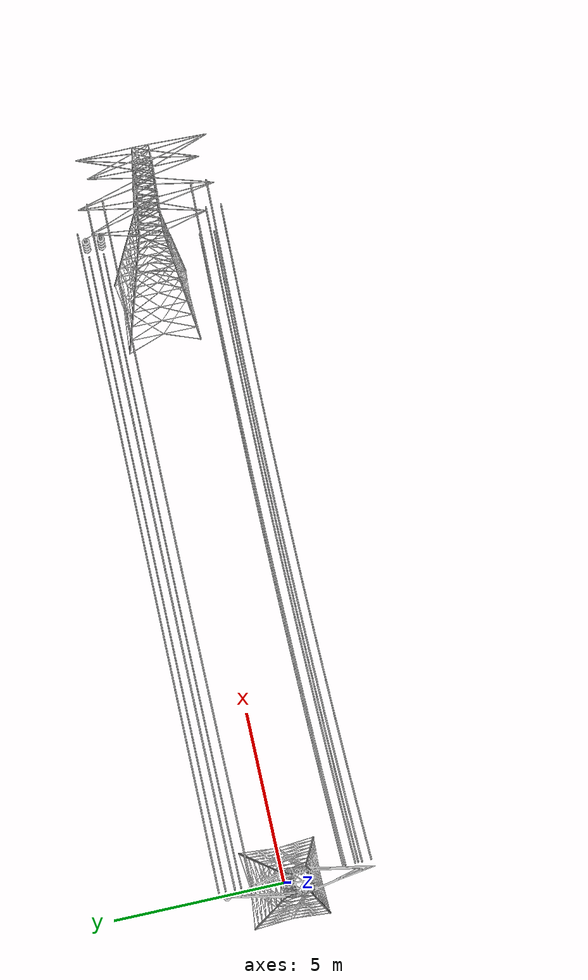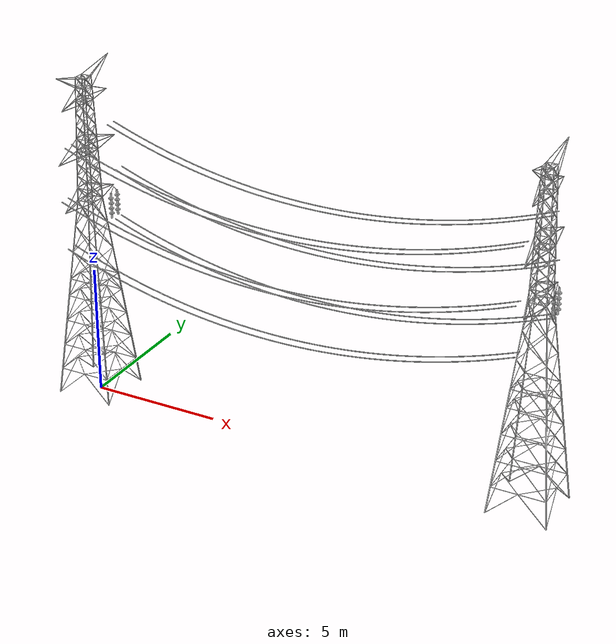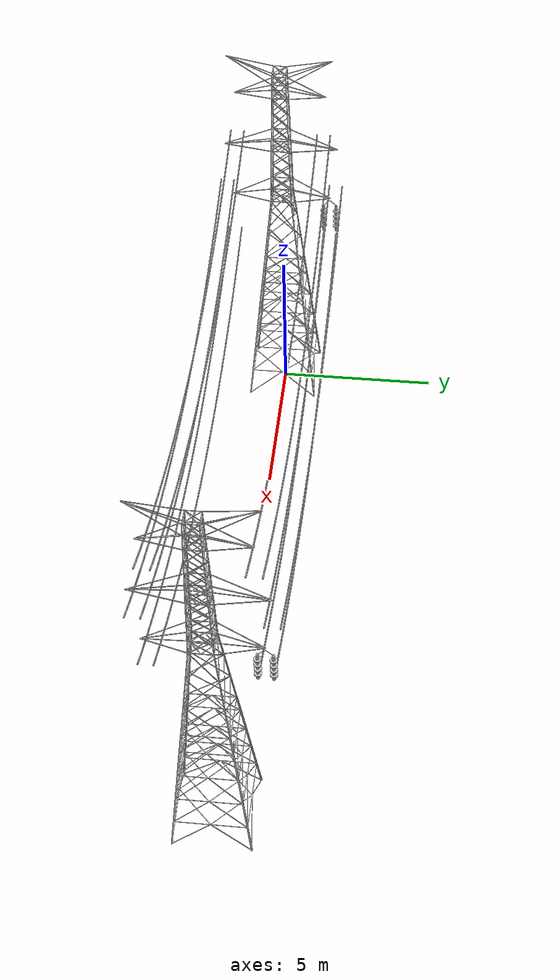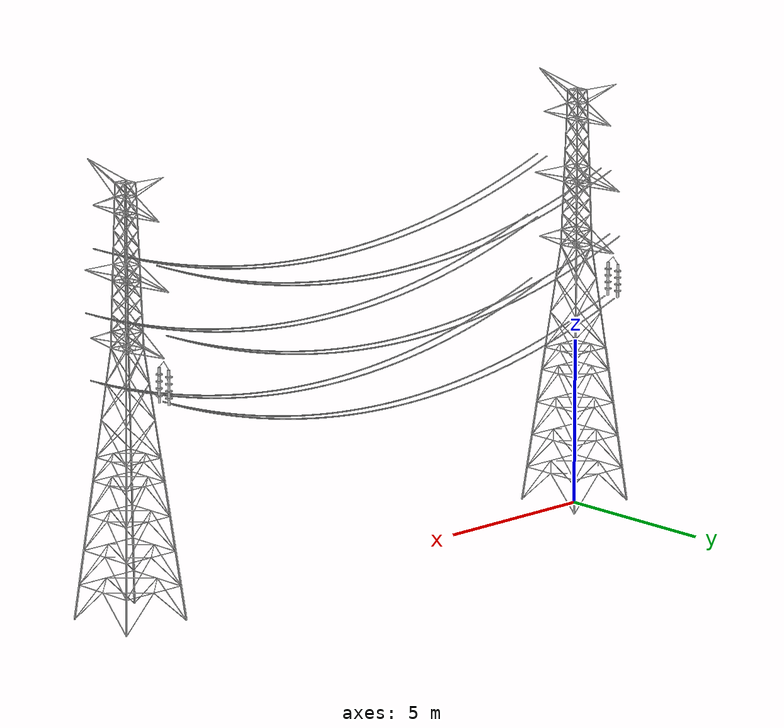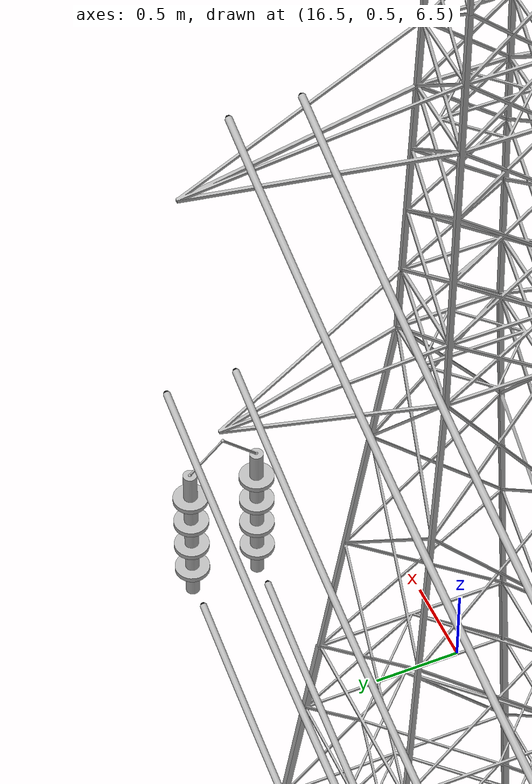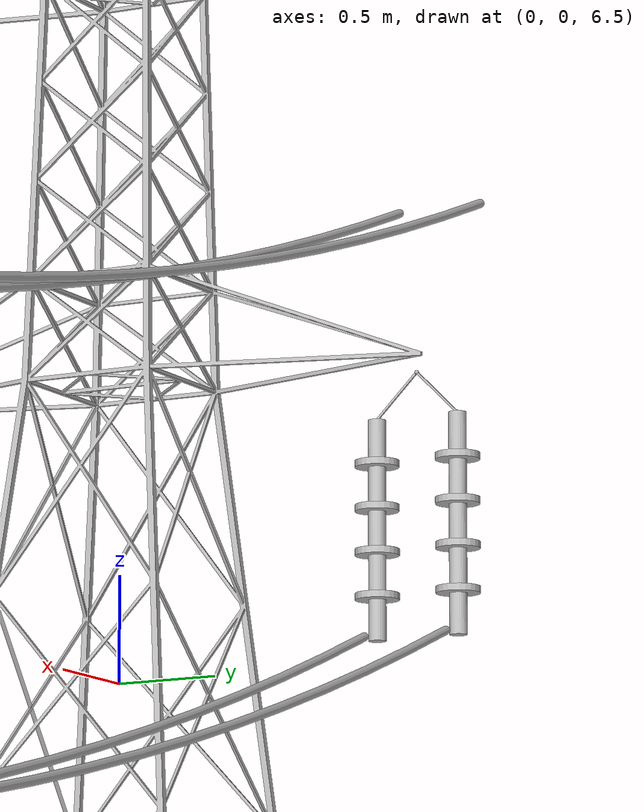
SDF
<?xml version='1.0'?>
<sdf version='1.4'>
<static>true</static>

	<model name="Red">
		<include>
      		<uri>model://Torre</uri>
            <name>Torre_0</name>
      		<pose>0.0 0 0 0 0 0</pose>
    	</include>

	<include>
      		<uri>model://Torre</uri>
            		<name>Torre_1</name>
      		<pose>17.4548 0 0 0 0 0</pose>
    	</include>

        <include>
            <uri>model://cable_torre</uri>
	      <name>Cable_1</name>
            <pose>8.73 1.32 6.6 0 0 0</pose>
        </include>

        <include>
            <uri>model://cable_torre</uri>
		<name>Cable_2</name>
            <pose>8.73 1.72 6.6 0 0 0</pose>
        </include>

        <include>
            <uri>model://cable_torre</uri>
		<name>Cable_3</name>
            <pose>8.73 -1.72 6.6 0 0 0</pose>
        </include>

        <include>
            <uri>model://cable_torre</uri>
		<name>Cable_4</name>
            <pose>8.73 -1.32 6.6 0 0 0</pose>
        </include>

        <include>
            <uri>model://cable_torre</uri>
		<name>Cable_5</name>
            <pose>8.73 1.50 8.5 0 0 0</pose>
        </include>

        <include>
            <uri>model://cable_torre</uri>
		<name>Cable_7</name>
            <pose>8.73 -1.50 8.5 0 0 0</pose>
        </include>

        <include>
            <uri>model://cable_torre</uri>
		<name>Cable_8</name>
            <pose>8.73 -1.90 8.5 0 0 0</pose>
        </include>

        <include>
            <uri>model://cable_torre</uri>
		<name>Cable_6</name>
            <pose>8.73 1.90 8.5 0 0 0</pose>
        </include>

        <include>
            <uri>model://cable_torre</uri>
		<name>Cable_9</name>
            <pose>8.73 -1.52 10.4 0 0 0</pose>
        </include>

        <include>
            <uri>model://cable_torre</uri>
		<name>Cable_10</name>
            <pose>8.73 1.52 10.4 0 0 0</pose>
        </include>

        <include>
            <uri>model://cable_torre</uri>
		<name>Cable_11</name>
            <pose>8.73 1.12 10.4 0 0 0</pose>
        </include>

        <include>
            <uri>model://cable_torre</uri>
		<name>Cable_12</name>
            <pose>8.73 -1.12 10.4 0 0 0</pose>
        </include>

        <joint name="joint_Cable_0_0_1_A" type="fixed">
            <parent>Torre_2::link_torre</parent>
            <child>cable_torre::link_1</child>
        </joint>

        <joint name="joint_Cable_0_0_2_A" type="fixed">
            <parent>Torre_1::link_torre</parent>
            <child>cable_torre::link_0</child>
        </joint>

        <joint name="joint_Cable_0_0_3_A" type="fixed">
            <parent>Torre_2::link_torre</parent>
            <child>cable_torre::link_1</child>
        </joint>

        <joint name="joint_Cable_0_0_4_A" type="fixed">
            <parent>Torre_1::link_torre</parent>
            <child>cable_torre::link_0</child>
        </joint>

	</model>
</sdf>

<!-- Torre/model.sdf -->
<sdf version="1.4">
	<model name="Torre">
		<static>false</static>
		<self_collide>false</self_collide>
		<link name="link_torre">
  			<pose>0 0 0.1 0 0 0</pose>
			<visual name="visual_torre">
				<geometry>
        			<mesh>
          				<uri>model://Torre/meshes/Torre.stl</uri>
          				<scale>20 20 20</scale>
        			</mesh>
      			</geometry>
			</visual>

			<collision name="collision_torre">
				<pose>0 0 6.5 0 0 0</pose>
				<geometry>
					<box>
		            	<size>1 1 13</size>
		        	</box>
		        </geometry>
			</collision>
			<inertial>
				<mass>5000</mass>
				<inertia>
			        <ixx>1</ixx>
			        <iyy>1</iyy>
			        <izz>1</izz>
			    </inertia>
			</inertial>
		</link>

		<joint name="joint_suelo" type="fixed">
			<parent>world</parent>
			<child>link_torre</child>
		</joint>

		<include>
			<uri>model://Apoyo_cables</uri>
			<pose>0 1.52 7.8 0 1.5707963267948966 0</pose>
			<name>apoyo_0_0</name>
		</include>

		<joint name="joint_apoyo_0_0" type="fixed">
			<child>apoyo_0_0::bola_central</child>
			<parent>world</parent>
		</joint>
	</model>
</sdf>

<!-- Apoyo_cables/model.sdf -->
<sdf version="1.4">
	<model name="apoyo">
		<static>false</static>
		<self_collide>false</self_collide>
		<pose>0 0 2 0 0 0</pose>
		<link name="bola_central">
			<visual name="visual">
				<geometry>
        			<sphere>
          				<radius>0.01</radius>
        			</sphere>
      			</geometry>
			</visual>

			<collision name="collision">
				<geometry>
        			<sphere>
          				<radius>0.01</radius>
        			</sphere>
      			</geometry>
			</collision>
		</link>

		<link name="palo_0">
			<pose>0.10 0.10 0 0 0 0.7853981633974483</pose>
			<visual name="visual">
				<geometry>
					<box>
						<size>0.2828 0.01 0.01</size>
					</box>
				</geometry>
			</visual>

 			<collision name="collision">
				<geometry>
					<box>
						<size>0.2828 0.01 0.01</size>
					</box>
				</geometry>
			</collision>
		</link>

		<joint name="bola_central_palo_0" type="fixed">
			<parent>bola_central</parent>
			<child>palo_0</child>
		</joint>

		<link name="bola_borde_0">
			<pose>0.2  0.2 0 0 0 0</pose>
			<visual name="visual">
				<geometry>
        			<sphere>
          				<radius>0.01</radius>
        			</sphere>
      			</geometry>
			</visual>

			<collision name="collision">
				<geometry>
        			<sphere>
          				<radius>0.01</radius>
        			</sphere>
      			</geometry>
			</collision>
		</link>

		<joint name="bola_borde_0_palo_0" type="fixed">
			<parent>bola_borde_0</parent>
			<child>palo_0</child>
		</joint> -->

		<include>
			<uri>model://Aislador</uri>
			<name>Aislador_0</name>
			<pose>0.2  0.2 0 0 -1.5707963267948966 0</pose>
		</include>

		<joint name="joint_aislador_0" type="fixed">
			<child>Aislador_0::aislador</child>
			<parent>bola_borde_0</parent>
		</joint>

		<link name="palo_1">
			<pose>0.10 -0.10 0 0 0 -0.7853981633974483</pose>
			<visual name="visual">
				<geometry>
					<box>
						<size>0.2828 0.01 0.01</size>
					</box>
				</geometry>
			</visual>

 			<collision name="collision">
				<geometry>
					<box>
						<size>0.2828 0.01 0.01</size>
					</box>
				</geometry>
			</collision>
		</link>

		<joint name="bola_central_palo_1" type="fixed">
			<parent>bola_central</parent>
			<child>palo_1</child>
		</joint>

		<link name="bola_borde_1">
			<pose>0.2 -0.2 0 0 0 0</pose>
			<visual name="visual">
				<geometry>
        			<sphere>
          				<radius>0.01</radius>
        			</sphere>
      			</geometry>
			</visual>

			<collision name="collision">
				<geometry>
        			<sphere>
          				<radius>0.01</radius>
        			</sphere>
      			</geometry>
			</collision>
		</link>

		<joint name="bola_borde_1_palo_1" type="fixed">
			<parent>bola_borde_1</parent>
			<child>palo_1</child>
		</joint> -->

		<include>
			<uri>model://Aislador</uri>
			<name>Aislador_1</name>
			<pose>0.2 -0.2 0 0 -1.5707963267948966 0</pose>
		</include>

		<joint name="joint_aislador_1" type="fixed">
			<child>Aislador_1::aislador</child>
			<parent>bola_borde_1</parent>
		</joint>

	</model>
</sdf>

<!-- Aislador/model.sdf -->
<sdf version='1.6'>
	<model name='Aislador'>
		<self_collide>false</self_collide>
		<link name='aislador'>
			<visual name = "visual_palo">
				<pose>0 0 -0.5 0 0 0</pose>
				<geometry>
					<cylinder>
						<radius>0.04</radius>
						<length>1</length>
					</cylinder>
				</geometry>
			</visual>
			<collision name = "collision_palo">
				<pose>0 0 -0.5 0 0 0</pose>
				<geometry>
					<cylinder>
						<radius>0.04</radius>
						<length>1</length>
					</cylinder>
				</geometry>
			</collision>

			<visual name='visual_cilindro_1'>
				<pose>0 0 -0.2 0 0 0</pose>
		        <geometry>
			        <cylinder>
			            <radius>0.1</radius>
			            <length>0.03</length>
			        </cylinder>
		        </geometry>
      		</visual>
      		<collision name='visual_cilindro_1'>
      			<pose>0 0 -0.2 0 0 0</pose>
        		<geometry>
          			<cylinder>
			            <radius>0.1</radius>
			            <length>0.03</length>
          			</cylinder>
        		</geometry>
      		</collision>

			<visual name='visual_cilindro_2'>
				<pose>0 0 -0.4 0 0 0</pose>
		        <geometry>
			        <cylinder>
			            <radius>0.1</radius>
			            <length>0.03</length>
			        </cylinder>
		        </geometry>
      		</visual>
      		<collision name='visual_cilindro_2'>
      			<pose>0 0 -0.4 0 0 0</pose>
        		<geometry>
          			<cylinder>
			            <radius>0.1</radius>
			            <length>0.03</length>
          			</cylinder>
        		</geometry>
      		</collision>

			<visual name='visual_cilindro_3'>
				<pose>0 0 -0.6000000000000001 0 0 0</pose>
		        <geometry>
			        <cylinder>
			            <radius>0.1</radius>
			            <length>0.03</length>
			        </cylinder>
		        </geometry>
      		</visual>
      		<collision name='visual_cilindro_3'>
      			<pose>0 0 -0.6000000000000001 0 0 0</pose>
        		<geometry>
          			<cylinder>
			            <radius>0.1</radius>
			            <length>0.03</length>
          			</cylinder>
        		</geometry>
      		</collision>

			<visual name='visual_cilindro_4'>
				<pose>0 0 -0.8 0 0 0</pose>
		        <geometry>
			        <cylinder>
			            <radius>0.1</radius>
			            <length>0.03</length>
			        </cylinder>
		        </geometry>
      		</visual>
      		<collision name='visual_cilindro_4'>
      			<pose>0 0 -0.8 0 0 0</pose>
        		<geometry>
          			<cylinder>
			            <radius>0.1</radius>
			            <length>0.03</length>
          			</cylinder>
        		</geometry>
      		</collision>

			<inertial>
				<pose>0 0 -0.5 0 0 0</pose>
				<mass>1</mass>
				<inertia>
			        <ixx>1</ixx>
			        <iyy>1</iyy>
			        <izz>1</izz>
			    </inertia>
			</inertial>
		</link>
  	</model>
</sdf>

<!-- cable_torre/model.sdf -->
<sdf version='1.4'>
  <model name="cable_torre">
 <static>true</static>
 <link name="mesh_link">
   <pose>0 0 0 0 0 1.57</pose>
	<inertial>
    <mass>1</mass>
 	</inertial>
        <visual name="visual">
        <geometry>
            <mesh><uri>model://cable_torre/meshes/Pieza1.stl</uri>
              <scale>0.035 0.025 0.035</scale>
            </mesh>
          </geometry>
        </visual>
        <collision name="collision">
          <geometry>
            <mesh><uri>model://cable_torre/meshes/Pieza1.stl</uri>
              <scale>0.035 0.025 0.035</scale>
            </mesh>
          </geometry>
        </collision>
      </link>

      <link name="link_0">
        <pose>-8.59 0.00735 0 0 0 0</pose>
        <collision name="sphere">
          <geometry>
            <sphere>
              <radius>0.015</radius>
            </sphere>
          </geometry>
        </collision>
        <visual name="sphere">
          <geometry>
            <sphere>
              <radius>0.0175</radius>
            </sphere>
          </geometry>
          <material>
            <ambient>0 0 0 1</ambient>
            <emissive>0 0 0 1</emissive>
            <diffuse>0 0 0 1</diffuse>
            <specular>1 1 1 1</specular>
          </material>

        </visual>
      </link>

      <link name="link_1">
        <pose>8.59 -0.00735 0 0 0 0</pose>
        <collision name="sphere">
          <geometry>
            <sphere>
              <radius>0.015</radius>
            </sphere>
          </geometry>
        </collision>
        <visual name="sphere">
          <geometry>
            <sphere>
              <radius>0.0175</radius>
            </sphere>
          </geometry>
          <material>
            <ambient>0 0 0 1</ambient>
            <emissive>0 0 0 1</emissive>
            <diffuse>0 0 0 1</diffuse>
            <specular>1 1 1 1</specular>
          </material>

        </visual>
      </link>

      <joint name="world" type="fixed">
        	<child>link_0</child>
        	<parent>world</parent>
      	</joint>

        <joint name="world" type="fixed">
            <child>link_1</child>
            <parent>world</parent>
          </joint>

      <joint name="joint_1" type="universal">
          <child>mesh_link</child>
          <parent>link_0</parent>
          <axis>
              <xyz>0 1 0</xyz>
              <limit>
                <lower>-0.39269908169872414</lower>
                <upper>0.39269908169872414</upper>
              </limit>
              <dynamics>
                <friction>50</friction>
              </dynamics>
          </axis>
          <physics>
              <ode>
                <cfm_damping>0</cfm_damping>
              </ode>
          </physics>
      </joint>

      <joint name="joint_2" type="universal">
          <child>mesh_link</child>
          <parent>link_1</parent>
          <axis>
              <xyz>0 1 0</xyz>
              <limit>
                <lower>-0.39269908169872414</lower>
                <upper>0.39269908169872414</upper>
              </limit>
              <dynamics>
                <friction>50</friction>
              </dynamics>
          </axis>
          <physics>
              <ode>
                <cfm_damping>0</cfm_damping>
              </ode>
          </physics>
      </joint>
    </model>
</sdf>
